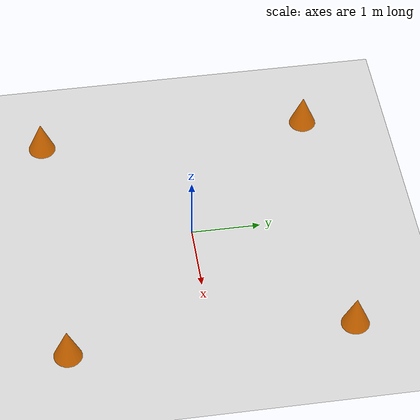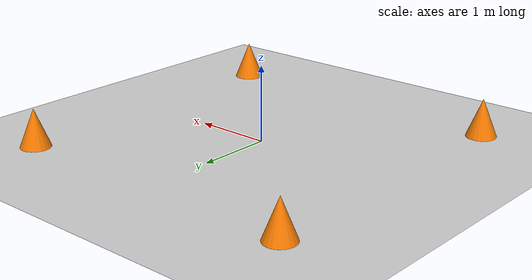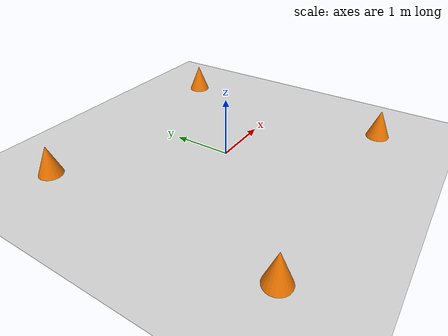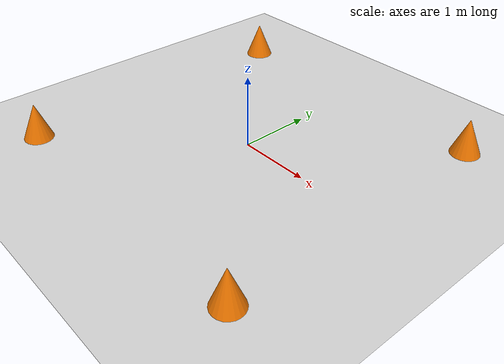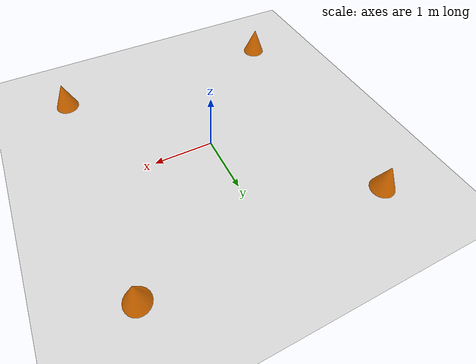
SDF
<?xml version="1.0"?>
<sdf version="1.6">
  <world name="advika_playground">
    <physics type="ode">
      <max_step_size>0.001</max_step_size>
      <real_time_factor>1.0</real_time_factor>
    </physics>
    <scene>
      <ambient>0.4 0.4 0.4 1</ambient>
      <background>0.7 0.7 0.7 1</background>
      <shadows>true</shadows>
    </scene>

    <!-- Light Source -->
    <light name="sun" type="directional">
      <pose>5 5 10 0 0 0</pose>
      <diffuse>0.8 0.8 0.8 1</diffuse>
      <specular>0.2 0.2 0.2 1</specular>
      <direction>-0.5 0.1 -0.9</direction>
      <cast_shadows>true</cast_shadows>
    </light>

    <!-- Ground Plane -->
    <include>
      <uri>https://fuel.gazebosim.org/1.0/OpenRobotics/models/Ground Plane</uri>
    </include>

    <!-- Playground Boundary (optional cones) -->
    <model name="cone_1"><static>true</static><pose>2 2 0.25 0 0 0</pose>
      <link name="link"><collision><geometry><cone><radius>0.2</radius><length>0.5</length></cone></geometry></collision>
      <visual><geometry><cone><radius>0.2</radius><length>0.5</length></cone></geometry><material><ambient>1 0.5 0 1</ambient></material></visual></link></model>

    <model name="cone_2"><static>true</static><pose>2 -2 0.25 0 0 0</pose>
      <link name="link"><collision><geometry><cone><radius>0.2</radius><length>0.5</length></cone></geometry></collision>
      <visual><geometry><cone><radius>0.2</radius><length>0.5</length></cone></geometry><material><ambient>1 0.5 0 1</ambient></material></visual></link></model>

    <model name="cone_3"><static>true</static><pose>-2 2 0.25 0 0 0</pose>
      <link name="link"><collision><geometry><cone><radius>0.2</radius><length>0.5</length></cone></geometry></collision>
      <visual><geometry><cone><radius>0.2</radius><length>0.5</length></cone></geometry><material><ambient>1 0.5 0 1</ambient></material></visual></link></model>

    <model name="cone_4"><static>true</static><pose>-2 -2 0.25 0 0 0</pose>
      <link name="link"><collision><geometry><cone><radius>0.2</radius><length>0.5</length></cone></geometry></collision>
      <visual><geometry><cone><radius>0.2</radius><length>0.5</length></cone></geometry><material><ambient>1 0.5 0 1</ambient></material></visual></link></model>

  </world>
</sdf>
